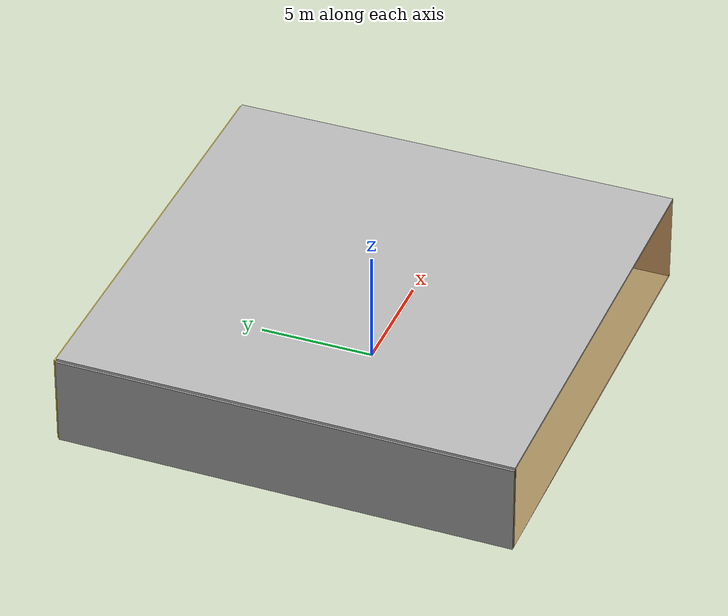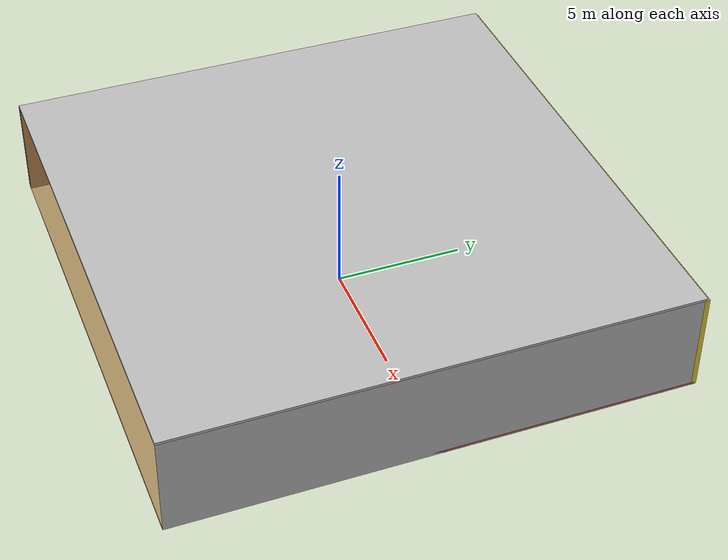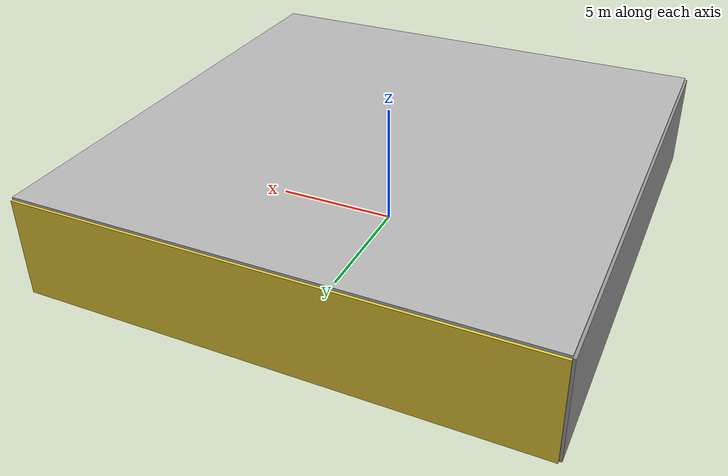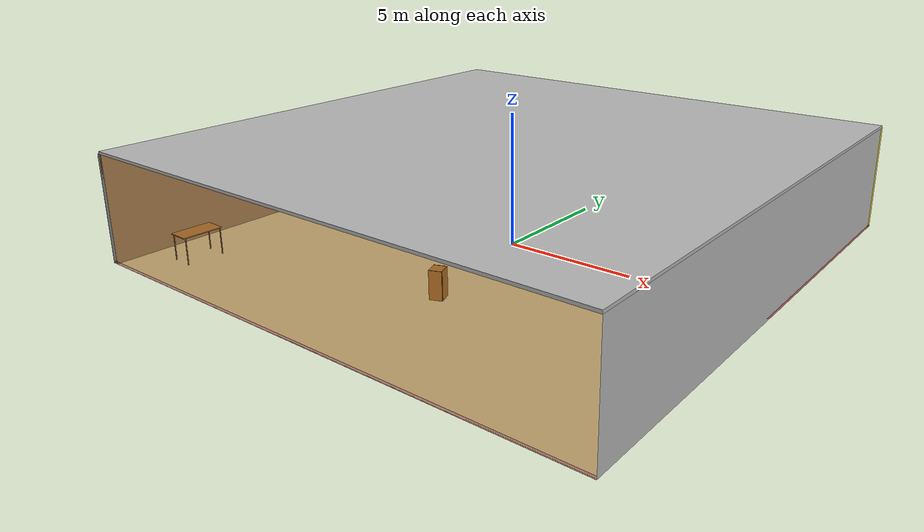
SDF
<sdf version="1.4">
 <world name="default">
  <physics type="ode">
   <max_step_size>0.001</max_step_size>
   <real_time_factor>1</real_time_factor>
   <real_time_update_rate>1000</real_time_update_rate>
   <gravity>0 0 -9.8</gravity>
  </physics>
  <scene><ambient>0.4 0.4 0.4 1</ambient><background>0.7 0.7 0.7 1</background><shadows>1</shadows></scene>
  <model name="Surrounding">
   <static>1</static>
   <link name="Ceiling">
    <collision name="Ceiling_Collision"><geometry><box><size>20 20 0.1</size></box></geometry></collision>
    <visual name="Ceiling_Visual">
     <geometry><box><size>20 20 0.1</size></box></geometry>
     <material>
      <script><uri>file://media/materials/scripts/gazebo.material</uri><name>Gazebo/CloudySky</name></script>
     </material>
    </visual>
    <pose>0 0 4.05 0 0 0</pose>
   </link>
   <link name="Wall_South">
    <collision name="Wall_South_Collision">
     <geometry><box><size>20 0 4</size></box></geometry>
     <pose>0 0 2 0 -0 0</pose>
    </collision>
    <visual name="Wall_South_Visual">
     <pose>0 0 2 0 -0 0</pose>
     <geometry><box><size>20 0 4</size></box></geometry>
     <material>
      <script>
       <uri>file://media/materials/scripts/gazebo.material</uri>
       <name>Gazebo/OrangeTransparent</name>
      </script>
     </material>
    </visual>
    <velocity_decay><linear>0</linear><angular>0</angular></velocity_decay>
    <pose>0 -10 0 0 -0 0</pose>
   </link>
   <link name="Wall_East">
    <collision name="Wall_21_Collision">
     <geometry><box><size>20 0 4</size></box></geometry>
     <pose>0 0 2 0 -0 0</pose>
    </collision>
    <visual name="Wall_21_Visual">
     <pose>0 0 2 0 -0 0</pose>
     <geometry><box><size>20 0 4</size></box></geometry>
     <material>
      <script><uri>file://media/materials/scripts/gazebo.material</uri><name>Gazebo/LightOff</name></script>
     </material>
    </visual>
    <velocity_decay><linear>0</linear><angular>0</angular></velocity_decay>
    <pose>10 0 0 0 -0 1.5708</pose>
   </link>
   <link name="Wall_North">
    <collision name="Wall_22_Collision">
     <geometry><box><size>20 0.2 4</size></box></geometry>
     <pose>0 0 2 0 -0 0</pose>
    </collision>
    <visual name="Wall_22_Visual">
     <pose>0 0 2 0 -0 0</pose>
     <geometry><box><size>20 0.2 4</size></box></geometry>
     <material>
      <script><uri>file://media/materials/scripts/gazebo.material</uri><name>Gazebo/ZincYellow</name></script>
     </material>
    </visual>
    <velocity_decay><linear>0</linear><angular>0</angular></velocity_decay>
    <pose>0 10 0 0 -0 0</pose>
   </link>
   <link name="Wall_West">
    <collision name="Wall_23_Collision">
     <geometry><box><size>20 0.2 4</size></box></geometry>
     <pose>0 0 2 0 -0 0</pose>
    </collision>
    <visual name="Wall_23_Visual">
     <pose>0 0 2 0 -0 0</pose>
     <geometry><box><size>20 0.2 4</size></box></geometry>
     <material>
      <script><uri>file://media/materials/scripts/gazebo.material</uri><name>Gazebo/GreyGradientSky</name></script>
     </material>
    </visual>
    <velocity_decay><linear>0</linear><angular>0</angular></velocity_decay>
    <pose>-10 0 0 0 0 -1.5708</pose>
   </link>
   <link name="Ground_link">
    <collision name="collision">
     <pose>0 0 .05 0 -0 0</pose>
     <geometry><box><size>20 20 0.1</size></box></geometry>
    </collision>
    <visual name="visual">
     <pose>0 0 .05 0 -0 0</pose>
     <geometry><box><size>20 20 0.1</size></box></geometry>
     <material>
      <script><uri>file://media/materials/scripts/gazebo.material</uri><name>Gazebo/RedTransparent</name></script>
     </material>
    </visual>
   </link>
   <static>1</static>
  </model>
  <spherical_coordinates>
   <surface_model>EARTH_WGS84</surface_model>
   <latitude_deg>0</latitude_deg>
   <longitude_deg>0</longitude_deg>
   <elevation>0</elevation>
   <heading_deg>0</heading_deg>
  </spherical_coordinates>
  <light name="lightball_0" type="diffuse">
   <diffuse>0.8 0.8 0.8 1</diffuse>
   <specular>0.2 0.2 0.2 1</specular>
   <attenuation>
    <range>100</range>
    <constant>0.7</constant>
    <linear>0.01</linear>
    <quadratic>0.001</quadratic>
   </attenuation>
   <direction>-0.5 0.1 -0.9</direction>
   <pose>8.17145142984 -7.70502270213 2.4897210759 0 0 0</pose>
  </light>
  <light name="lightball_1" type="diffuse">
   <diffuse>0.8 0.8 0.8 1</diffuse>
   <specular>0.2 0.2 0.2 1</specular>
   <attenuation>
    <range>100</range>
    <constant>0.7</constant>
    <linear>0.01</linear>
    <quadratic>0.001</quadratic>
   </attenuation>
   <direction>-0.5 0.1 -0.9</direction>
   <pose>-2.14098388692 6.40309908861 3.81970323173 0 0 0</pose>
  </light>
  <light name="lightball_2" type="diffuse">
   <diffuse>0.8 0.8 0.8 1</diffuse>
   <specular>0.2 0.2 0.2 1</specular>
   <attenuation>
    <range>100</range>
    <constant>0.7</constant>
    <linear>0.01</linear>
    <quadratic>0.001</quadratic>
   </attenuation>
   <direction>-0.5 0.1 -0.9</direction>
   <pose>5.96575997122 8.28585351233 3.32730755317 0 0 0</pose>
  </light>
  <light name="lightball_3" type="diffuse">
   <diffuse>0.8 0.8 0.8 1</diffuse>
   <specular>0.2 0.2 0.2 1</specular>
   <attenuation>
    <range>100</range>
    <constant>0.7</constant>
    <linear>0.01</linear>
    <quadratic>0.001</quadratic>
   </attenuation>
   <direction>-0.5 0.1 -0.9</direction>
   <pose>7.91862797537 -2.66845150937 1.23858188713 0 0 0</pose>
  </light>
  <light name="lightball_4" type="diffuse">
   <diffuse>0.8 0.8 0.8 1</diffuse>
   <specular>0.2 0.2 0.2 1</specular>
   <attenuation>
    <range>100</range>
    <constant>0.7</constant>
    <linear>0.01</linear>
    <quadratic>0.001</quadratic>
   </attenuation>
   <direction>-0.5 0.1 -0.9</direction>
   <pose>-0.593000468318 -7.45642386477 2.36526768005 0 0 0</pose>
  </light>
  <light name="lightball_5" type="diffuse">
   <diffuse>0.8 0.8 0.8 1</diffuse>
   <specular>0.2 0.2 0.2 1</specular>
   <attenuation>
    <range>100</range>
    <constant>0.7</constant>
    <linear>0.01</linear>
    <quadratic>0.001</quadratic>
   </attenuation>
   <direction>-0.5 0.1 -0.9</direction>
   <pose>-2.05038515249 2.92884616646 3.82542234532 0 0 0</pose>
  </light>
  <light name="lightball_6" type="diffuse">
   <diffuse>0.8 0.8 0.8 1</diffuse>
   <specular>0.2 0.2 0.2 1</specular>
   <attenuation>
    <range>100</range>
    <constant>0.7</constant>
    <linear>0.01</linear>
    <quadratic>0.001</quadratic>
   </attenuation>
   <direction>-0.5 0.1 -0.9</direction>
   <pose>7.87236943142 -0.0835574986741 0.575738950633 0 0 0</pose>
  </light>
  <light name="lightball_7" type="diffuse">
   <diffuse>0.8 0.8 0.8 1</diffuse>
   <specular>0.2 0.2 0.2 1</specular>
   <attenuation>
    <range>100</range>
    <constant>0.7</constant>
    <linear>0.01</linear>
    <quadratic>0.001</quadratic>
   </attenuation>
   <direction>-0.5 0.1 -0.9</direction>
   <pose>-7.00076790334 3.10480419833 1.78360228272 0 0 0</pose>
  </light>
  <light name="lightball_8" type="diffuse">
   <diffuse>0.8 0.8 0.8 1</diffuse>
   <specular>0.2 0.2 0.2 1</specular>
   <attenuation>
    <range>100</range>
    <constant>0.7</constant>
    <linear>0.01</linear>
    <quadratic>0.001</quadratic>
   </attenuation>
   <direction>-0.5 0.1 -0.9</direction>
   <pose>5.22427516837 7.0507458892 0.99408288353 0 0 0</pose>
  </light>
  <light name="lightball_9" type="diffuse">
   <diffuse>0.8 0.8 0.8 1</diffuse>
   <specular>0.2 0.2 0.2 1</specular>
   <attenuation>
    <range>100</range>
    <constant>0.7</constant>
    <linear>0.01</linear>
    <quadratic>0.001</quadratic>
   </attenuation>
   <direction>-0.5 0.1 -0.9</direction>
   <pose>-2.7229738126 1.70920506536 1.56246953208 0 0 0</pose>
  </light>
  <light name="lightball_10" type="diffuse">
   <diffuse>0.8 0.8 0.8 1</diffuse>
   <specular>0.2 0.2 0.2 1</specular>
   <attenuation>
    <range>100</range>
    <constant>0.7</constant>
    <linear>0.01</linear>
    <quadratic>0.001</quadratic>
   </attenuation>
   <direction>-0.5 0.1 -0.9</direction>
   <pose>-7.91455050876 -1.32113386193 2.26939026351 0 0 0</pose>
  </light>
  <include><uri>model://table</uri><pose>-8.19456586908 -7.82211581971 0 0 0 1.54558032623</pose></include>
  <include>
   <uri>model://robocup_3Dsim_goal</uri>
   <pose>-8.24444178243 -1.93936920783 0 0 0 2.68900932222</pose>
  </include>
  <include><uri>model://cabinet</uri><pose>-4.76604926499 6.98134574787 0 0 0 2.61455156845</pose></include>
  <include><uri>model://cabinet</uri><pose>0.944126613758 -5.15210032316 0 0 0 0.360889732244</pose></include>
  <include><uri>model://table</uri><pose>0.958992933267 1.94350219198 0 0 0 0.276625282144</pose></include>
  <include>
   <uri>model://robocup_3Dsim_goal</uri>
   <pose>4.79376357629 -1.95149302224 0 0 0 0.815572858447</pose>
  </include>
  <include>
   <uri>model://textured_shapes</uri>
   <pose>6.95071447549 2.07309617664 0 0 0 1.49819787599</pose>
  </include>
  <include>
   <uri>model://construction_cone</uri>
   <pose>7.49147840413 7.86587674552 0 0 0 1.19713186734</pose>
  </include>
 </world>
</sdf>

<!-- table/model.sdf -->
<sdf version="1.5">
  <model name="table">
    <static>true</static>
    <link name="link">
      <collision name="surface">
        <pose>0 0 1.0 0 0 0</pose>
        <geometry>
          <box>
            <size>1.5 0.8 0.03</size>
          </box>
        </geometry>
        <surface>
          <friction>
            <ode>
              <mu>0.6</mu>
              <mu2>0.6</mu2>
            </ode>
          </friction>
        </surface>
      </collision>
      <visual name="visual1">
        <pose>0 0 1.0 0 0 0</pose>
        <geometry>
          <box>
            <size>1.5 0.8 0.03</size>
          </box>
        </geometry>
        <material>
          <script>
            <uri>model://media/materials/scripts/gazebo.material</uri>
            <name>Gazebo/Wood</name>
          </script>
        </material>
      </visual>
      <collision name="front_left_leg">
        <pose>0.68 0.38 0.5 0 0 0</pose>
        <geometry>
          <cylinder>
            <radius>0.02</radius>
            <length>1.0</length>
          </cylinder>
        </geometry>
      </collision>
      <visual name="front_left_leg">
        <pose>0.68 0.38 0.5 0 0 0</pose>
        <geometry>
          <cylinder>
            <radius>0.02</radius>
            <length>1.0</length>
          </cylinder>
        </geometry>
        <material>
          <script>
            <uri>model://media/materials/scripts/gazebo.material</uri>
            <name>Gazebo/Grey</name>
          </script>
        </material>
      </visual>
      <collision name="front_right_leg">
        <pose>0.68 -0.38 0.5 0 0 0</pose>
        <geometry>
          <cylinder>
            <radius>0.02</radius>
            <length>1.0</length>
          </cylinder>
        </geometry>
      </collision>
      <visual name="front_right_leg">
        <pose>0.68 -0.38 0.5 0 0 0</pose>
        <geometry>
          <cylinder>
            <radius>0.02</radius>
            <length>1.0</length>
          </cylinder>
        </geometry>
        <material>
          <script>
            <uri>model://media/materials/scripts/gazebo.material</uri>
            <name>Gazebo/Grey</name>
          </script>
        </material>
      </visual>
      <collision name="back_right_leg">
        <pose>-0.68 -0.38 0.5 0 0 0</pose>
        <geometry>
          <cylinder>
            <radius>0.02</radius>
            <length>1.0</length>
          </cylinder>
        </geometry>
      </collision>
      <visual name="back_right_leg">
        <pose>-0.68 -0.38 0.5 0 0 0</pose>
        <geometry>
          <cylinder>
            <radius>0.02</radius>
            <length>1.0</length>
          </cylinder>
        </geometry>
        <material>
          <script>
            <uri>model://media/materials/scripts/gazebo.material</uri>
            <name>Gazebo/Grey</name>
          </script>
        </material>
      </visual>
      <collision name="back_left_leg">
        <pose>-0.68 0.38 0.5 0 0 0</pose>
        <geometry>
          <cylinder>
            <radius>0.02</radius>
            <length>1.0</length>
          </cylinder>
        </geometry>
      </collision>
      <visual name="back_left_leg">
        <pose>-0.68 0.38 0.5 0 0 0</pose>
        <geometry>
          <cylinder>
            <radius>0.02</radius>
            <length>1.0</length>
          </cylinder>
        </geometry>
        <material>
          <script>
            <uri>model://media/materials/scripts/gazebo.material</uri>
            <name>Gazebo/Grey</name>
          </script>
        </material>
      </visual>
    </link>
  </model>
</sdf>

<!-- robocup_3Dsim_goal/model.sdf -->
<sdf version="1.5">
  <model name="robocup_3d_goal">
    <static>true</static>
    <link name="left_post">
      <pose>0 1.05 0.45 0 0 0</pose>
      <collision name="collision">
        <geometry>
          <cylinder>
            <radius>0.05</radius>
            <length>0.9</length>
          </cylinder>
        </geometry>
      </collision>
      <visual name="visual">
        <geometry>
          <cylinder>
            <radius>0.05</radius>
            <length>0.9</length>
          </cylinder>
        </geometry>
        <material>
          <script>
            <uri>file://media/materials/scripts/gazebo.material</uri>
            <name>Gazebo/ZincYellow</name>
          </script>
        </material>
      </visual>
    </link>
    <link name="left_support_horiz_lower">
      <pose>0.30 1.05 0.01 0 0 0</pose>
      <collision name="collision">
        <geometry>
          <box>
            <size>0.50 0.02 0.02</size>
          </box>
        </geometry>
      </collision>
      <visual name="visual">
        <geometry>
          <box>
            <size>0.50 0.02 0.02</size>
          </box>
        </geometry>
        <material>
          <script>
            <uri>file://media/materials/scripts/gazebo.material</uri>
            <name>Gazebo/White</name>
          </script>
        </material>
      </visual>
    </link>
    <link name="left_support_horiz_upper">
      <pose>0.30 1.05 0.79 0 0 0</pose>
      <collision name="collision">
        <geometry>
          <box>
            <size>0.50 0.02 0.02</size>
          </box>
        </geometry>
      </collision>
      <visual name="visual">
        <geometry>
          <box>
            <size>0.50 0.02 0.02</size>
          </box>
        </geometry>
        <material>
          <script>
            <uri>file://media/materials/scripts/gazebo.material</uri>
            <name>Gazebo/White</name>
          </script>
        </material>
      </visual>
    </link>
    <link name="left_support_vertical">
      <pose>0.56 1.05 0.4 0 1.5708 0</pose>
      <collision name="collision">
        <geometry>
          <box>
            <size>0.80 0.02 0.02</size>
          </box>
        </geometry>
      </collision>
      <visual name="visual">
        <geometry>
          <box>
            <size>0.80 0.02 0.02</size>
          </box>
        </geometry>
        <material>
          <script>
            <uri>file://media/materials/scripts/gazebo.material</uri>
            <name>Gazebo/White</name>
          </script>
        </material>
      </visual>
    </link>
    <link name="right_support_horiz_lower">
      <pose>0.30 -1.05 0.01 0 0 0</pose>
      <collision name="collision">
        <geometry>
          <box>
            <size>0.50 0.02 0.02</size>
          </box>
        </geometry>
      </collision>
      <visual name="visual">
        <geometry>
          <box>
            <size>0.50 0.02 0.02</size>
          </box>
        </geometry>
        <material>
          <script>
            <uri>file://media/materials/scripts/gazebo.material</uri>
            <name>Gazebo/White</name>
          </script>
        </material>
      </visual>
    </link>
    <link name="right_support_horiz_upper">
      <pose>0.30 -1.05 0.79 0 0 0</pose>
      <collision name="collision">
        <geometry>
          <box>
            <size>0.50 0.02 0.02</size>
          </box>
        </geometry>
      </collision>
      <visual name="visual">
        <geometry>
          <box>
            <size>0.50 0.02 0.02</size>
          </box>
        </geometry>
        <material>
          <script>
            <uri>file://media/materials/scripts/gazebo.material</uri>
            <name>Gazebo/White</name>
          </script>
        </material>
      </visual>
    </link>
    <link name="right_support_vertical">
      <pose>0.56 -1.05 0.4 0 1.5708 0</pose>
      <collision name="collision">
        <geometry>
          <box>
            <size>0.80 0.02 0.02</size>
          </box>
        </geometry>
      </collision>
      <visual name="visual">
        <geometry>
          <box>
            <size>0.80 0.02 0.02</size>
          </box>
        </geometry>
        <material>
          <script>
            <uri>file://media/materials/scripts/gazebo.material</uri>
            <name>Gazebo/White</name>
          </script>
        </material>
      </visual>
    </link>
    <link name="center_support_horiz_lower">
      <pose>0.56 0 0.01 0 1.5708 0</pose>
      <collision name="collision">
        <geometry>
          <box>
            <size>0.02 2.08 0.02</size>
          </box>
        </geometry>
      </collision>
      <visual name="visual">
        <geometry>
          <box>
            <size>0.02 2.08 0.02</size>
          </box>
        </geometry>
        <material>
          <script>
            <uri>file://media/materials/scripts/gazebo.material</uri>
            <name>Gazebo/White</name>
          </script>
        </material>
      </visual>
    </link>
    <link name="center_support_horiz_upper">
      <pose>0.56 0 0.79 0 1.5708 0</pose>
      <collision name="collision">
        <geometry>
          <box>
            <size>0.02 2.08 0.02</size>
          </box>
        </geometry>
      </collision>
      <visual name="visual">
        <geometry>
          <box>
            <size>0.02 2.08 0.02</size>
          </box>
        </geometry>
        <material>
          <script>
            <uri>file://media/materials/scripts/gazebo.material</uri>
            <name>Gazebo/White</name>
          </script>
        </material>
      </visual>
    </link>
    <link name="right_post">
      <pose>0 -1.05 0.45 0 0 0</pose>
      <collision name="collision">
        <geometry>
          <cylinder>
            <radius>0.05</radius>
            <length>0.9</length>
          </cylinder>
        </geometry>
      </collision>
      <visual name="visual">
        <geometry>
          <cylinder>
            <radius>0.05</radius>
            <length>0.9</length>
          </cylinder>
        </geometry>
        <material>
          <script>
            <uri>file://media/materials/scripts/gazebo.material</uri>
            <name>Gazebo/ZincYellow</name>
          </script>
        </material>
      </visual>
    </link>
    <link name="crossbar">
      <pose>0 0 0.85 1.57 1.57 0</pose>
      <collision name="collision">
        <geometry>
          <cylinder>
            <radius>0.05</radius>
            <length>2.0</length>
          </cylinder>
        </geometry>
      </collision>
      <visual name="visual">
        <geometry>
          <cylinder>
            <radius>0.05</radius>
            <length>2.0</length>
          </cylinder>
        </geometry>
        <material>
          <script>
            <uri>file://media/materials/scripts/gazebo.material</uri>
            <name>Gazebo/ZincYellow</name>
          </script>
        </material>
      </visual>
    </link>
    <link name="center_net">
      <pose>0.56 0 0.40 0 0 0</pose>
      <collision name="collision">
        <geometry>
          <box>
            <size>0.01 2.1 0.80</size>
          </box>
        </geometry>
      </collision>
      <visual name="visual">
        <geometry>
          <box>
            <size>0.01 2.1 0.80</size>
          </box>
        </geometry>
        <material>
          <script>
            <uri>model://../model_source/models/robocup09_spl_field/materials/scripts/</uri>
            <uri>model://../model_source/models/robocup09_spl_field/materials/textures/</uri>
            <name>RoboCup/Net</name>
          </script>
        </material>
      </visual>
    </link>
    <link name="left_net">
      <pose>0.30 1.05 0.40 0 0 0</pose>
      <collision name="collision">
        <geometry>
          <box>
            <size>0.50 0.01 0.76</size>
          </box>
        </geometry>
      </collision>
      <visual name="visual">
        <geometry>
          <box>
            <size>0.50 0.01 0.76</size>
          </box>
        </geometry>
        <material>
          <script>
            <uri>model://../model_source/models/robocup09_spl_field/materials/scripts/</uri>
            <uri>model://../model_source/models/robocup09_spl_field/materials/textures/</uri>
            <name>RoboCup/Net</name>
          </script>
        </material>
      </visual>
    </link>
    <link name="right_net">
      <pose>0.30 -1.05 0.40 0 0 0</pose>
      <collision name="collision">
        <geometry>
          <box>
            <size>0.50 0.01 0.76</size>
          </box>
        </geometry>
      </collision>
      <visual name="visual">
        <geometry>
          <box>
            <size>0.50 0.01 0.76</size>
          </box>
        </geometry>
        <material>
          <script>
            <uri>model://../model_source/models/robocup09_spl_field/materials/scripts/</uri>
            <uri>model://../model_source/models/robocup09_spl_field/materials/textures/</uri>
            <name>RoboCup/Net</name>
          </script>
        </material>
      </visual>
    </link>
  </model>
</sdf>

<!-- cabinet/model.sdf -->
<sdf version="1.5">
  <model name="cabinet">
    <static>true</static>
    <link name="cabinet_bottom_plate">
      <inertial>
        <pose>0 0 -1 0 0 0</pose>
        <inertia>
          <ixx>2.050000</ixx>
          <ixy>0</ixy>
          <ixz>0</ixz>
          <iyy>2.050000</iyy>
          <iyz>0</iyz>
          <izz>2.050000</izz>
        </inertia>
        <mass>25.000000</mass>
      </inertial>
      <collision name="cabinet_bottom_plate_geom">
        <pose>0 0 0.010000 0 0 0</pose>
        <geometry>
          <box>
            <size>0.450000 0.450000 0.020000</size>
          </box>
        </geometry>
      </collision>
      <visual name="cabinet_bottom_plate_geom_visual">
        <pose>0 0 0.010000 0 0 0</pose>
        <geometry>
          <box>
            <size>0.450000 0.450000 0.020000</size>
          </box>
        </geometry>
        <material>
          <script>
            <uri>model://media/materials/scripts/gazebo.material</uri>
            <name>Gazebo/Wood</name>
          </script>
        </material>
      </visual>
      <collision name="cabinet_bottom_plate_geom_cabinet_back_plate">
        <pose>0.235000 0 0.510000 0 0 0</pose>
        <geometry>
          <box>
            <size>0.020000 0.450000 1.020000</size>
          </box>
        </geometry>
      </collision>
      <visual name="cabinet_bottom_plate_geom_cabinet_back_plate_visual">
        <pose>0.235000 0 0.510000 0 0 0</pose>
        <geometry>
          <box>
            <size>0.020000 0.450000 1.020000</size>
          </box>
        </geometry>
        <material>
          <script>
            <uri>model://media/materials/scripts/gazebo.material</uri>
            <name>Gazebo/Wood</name>
          </script>
        </material>
      </visual>
      <collision name="cabinet_bottom_plate_geom_cabinet_left_plate">
        <pose>0 0.235000 0.510000 0 0 0</pose>
        <geometry>
          <box>
            <size>0.450000 0.020000 1.020000</size>
          </box>
        </geometry>
      </collision>
      <visual name="cabinet_bottom_plate_geom_cabinet_left_plate_visual">
        <pose>0 0.235000 0.510000 0 0 0</pose>
        <geometry>
          <box>
            <size>0.450000 0.020000 1.020000</size>
          </box>
        </geometry>
        <material>
          <script>
            <uri>model://media/materials/scripts/gazebo.material</uri>
            <name>Gazebo/Wood</name>
          </script>
        </material>
      </visual>
      <collision name="cabinet_bottom_plate_geom_cabinet_middle_plate">
        <pose>0 0 0.510000 0 0 0</pose>
        <geometry>
          <box>
            <size>0.450000 0.450000 0.020000</size>
          </box>
        </geometry>
      </collision>
      <visual name="cabinet_bottom_plate_geom_cabinet_middle_plate_visual">
        <pose>0 0 0.510000 0 0 0</pose>
        <geometry>
          <box>
            <size>0.450000 0.450000 0.020000</size>
          </box>
        </geometry>
        <material>
          <script>
            <uri>model://media/materials/scripts/gazebo.material</uri>
            <name>Gazebo/Wood</name>
          </script>
        </material>
      </visual>
      <collision name="cabinet_bottom_plate_geom_cabinet_right_plate">
        <pose>0 -0.235000 0.510000 0 0 0</pose>
        <geometry>
          <box>
            <size>0.450000 0.020000 1.020000</size>
          </box>
        </geometry>
      </collision>
      <visual name="cabinet_bottom_plate_geom_cabinet_right_plate_visual">
        <pose>0 -0.235000 0.510000 0 0 0</pose>
        <geometry>
          <box>
            <size>0.450000 0.020000 1.020000</size>
          </box>
        </geometry>
        <material>
          <script>
            <uri>model://media/materials/scripts/gazebo.material</uri>
            <name>Gazebo/Wood</name>
          </script>
        </material>
      </visual>
      <collision name="cabinet_bottom_plate_geom_cabinet_top_plate">
        <pose>0 0 1.010000 0 0 0</pose>
        <geometry>
          <box>
            <size>0.450000 0.450000 0.020000</size>
          </box>
        </geometry>
      </collision>
      <visual name="cabinet_bottom_plate_geom_cabinet_top_plate_visual">
        <pose>0 0 1.010000 0 0 0</pose>
        <geometry>
          <box>
            <size>0.450000 0.450000 0.020000</size>
          </box>
        </geometry>
        <material>
          <script>
            <uri>model://media/materials/scripts/gazebo.material</uri>
            <name>Gazebo/Wood</name>
          </script>
        </material>
      </visual>
    </link>
  </model>
</sdf>

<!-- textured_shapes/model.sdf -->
<sdf version="1.6">
  <model name="textured_shapes">
    <pose>0 0 0.5 0 0 0</pose>
    <link name="box">
      <pose>0 -1.5 0 0 0 0</pose>
      <collision name="collision">
        <geometry>
          <box>
            <size>1 1 1</size>
          </box>
        </geometry>
      </collision>
      <visual name="visual">
        <geometry>
          <box>
            <size>1 1 1</size>
          </box>
        </geometry>
        <material>
          <script>
            <uri>model://../model_source/models/textured_shapes/materials/scripts</uri>
            <uri>model://../model_source/models/textured_shapes/materials/textures</uri>
            <name>TexturedShape/Squares</name>
          </script>
        </material>
      </visual>
    </link>
    <link name="sphere">
      <collision name="collision">
        <geometry>
          <sphere>
            <radius>0.5</radius>
          </sphere>
        </geometry>
      </collision>
      <visual name="visual">
        <geometry>
          <sphere>
            <radius>0.5</radius>
          </sphere>
        </geometry>
        <material>
          <script>
            <uri>model://../model_source/models/textured_shapes/materials/scripts</uri>
            <uri>model://../model_source/models/textured_shapes/materials/textures</uri>
            <name>TexturedShape/Squares</name>
          </script>
        </material>
      </visual>
    </link>
    <link name="cylinder">
      <pose>0 1.5 0 0 0 0</pose>
      <collision name="collision">
        <geometry>
          <cylinder>
            <radius>0.5</radius>
            <length>1</length>
          </cylinder>
        </geometry>
      </collision>
      <visual name="visual">
        <geometry>
          <cylinder>
            <radius>0.5</radius>
            <length>1</length>
          </cylinder>
        </geometry>
        <material>
          <script>
            <uri>model://../model_source/models/textured_shapes/materials/scripts</uri>
            <uri>model://../model_source/models/textured_shapes/materials/textures</uri>
            <name>TexturedShape/Squares</name>
          </script>
        </material>
      </visual>
    </link>
  </model>
</sdf>

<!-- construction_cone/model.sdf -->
<sdf version="1.5">
  <model name="Construction Cone">
    <link name="link">
      <collision name="collision">
        <geometry>
          <mesh>
            <scale>10 10 10</scale>
            <uri>file://isr-testbed/construction_cone/meshes/construction_cone.dae</uri>
          </mesh>
        </geometry>
      </collision>
      <visual name="visual">
        <geometry>
          <mesh>
            <scale>10 10 10</scale>
            <uri>file://isr-testbed/construction_cone/meshes/construction_cone.dae</uri>
          </mesh>
        </geometry>
      </visual>
    </link>
  </model>
</sdf>
